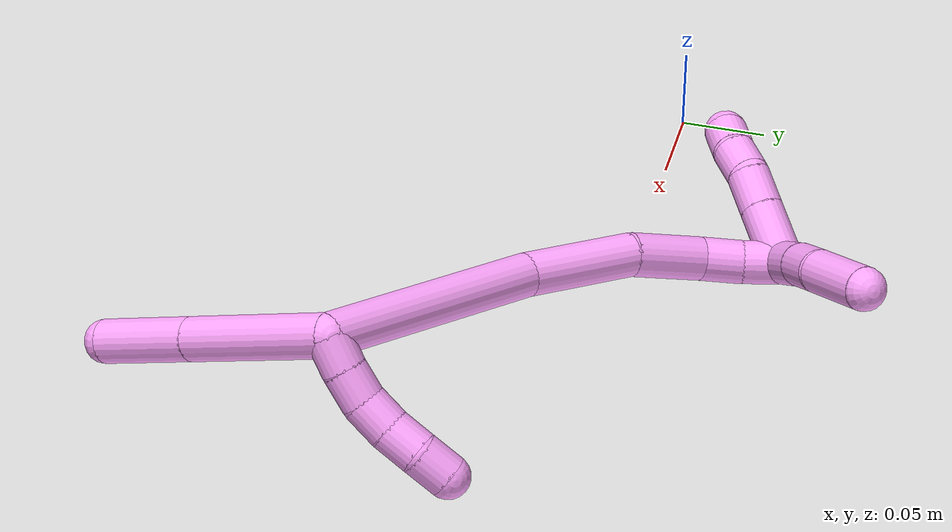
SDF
<sdf version="1.7">
 <world name="default">
  <model name="4">
   <static>0</static>
   <link name="4">
    <collision name="collision-cylinder-e_1_2_8">
     <pose>-0.016572 -0.022882 -0.035444 2.56834 -0.374292 -1.14212</pose>
     <geometry><cylinder><radius>0.0125</radius><length>0.090652</length></cylinder></geometry>
     <surface>
      <friction><ode><mu>1.16</mu><mu2>1.16</mu2><slip1>0</slip1><slip2>0</slip2></ode></friction>
      <contact><ode><kp>1e+06</kp><kd>1</kd><max_vel>0</max_vel><min_depth>0.001</min_depth></ode></contact>
     </surface>
    </collision>
    <visual name="visual-cylinder-e_1_2_8">
     <pose>-0.016572 -0.022882 -0.035444 2.56834 -0.374292 -1.14212</pose>
     <geometry><cylinder><radius>0.0125</radius><length>0.090652</length></cylinder></geometry>
     <material><ambient>1 0.65098 0.996078 1</ambient></material>
    </visual>
    <collision name="collision-cylinder-e_2_8_6">
     <pose>-0.04407 -0.060788 -0.094027 2.56568 -0.377072 -1.14456</pose>
     <geometry><cylinder><radius>0.0125</radius><length>0.059348</length></cylinder></geometry>
     <surface>
      <friction><ode><mu>1.16</mu><mu2>1.16</mu2><slip1>0</slip1><slip2>0</slip2></ode></friction>
      <contact><ode><kp>1e+06</kp><kd>1</kd><max_vel>0</max_vel><min_depth>0.001</min_depth></ode></contact>
     </surface>
    </collision>
    <visual name="visual-cylinder-e_2_8_6">
     <pose>-0.04407 -0.060788 -0.094027 2.56568 -0.377072 -1.14456</pose>
     <geometry><cylinder><radius>0.0125</radius><length>0.059348</length></cylinder></geometry>
     <material><ambient>1 0.65098 0.996078 1</ambient></material>
    </visual>
    <collision name="collision-cylinder-e_1_2_9">
     <pose>0.009133 -0.003706 0.001688 1.14351 1.15136 0.791182</pose>
     <geometry><cylinder><radius>0.0125</radius><length>0.02</length></cylinder></geometry>
     <surface>
      <friction><ode><mu>1.16</mu><mu2>1.16</mu2><slip1>0</slip1><slip2>0</slip2></ode></friction>
      <contact><ode><kp>1e+06</kp><kd>1</kd><max_vel>0</max_vel><min_depth>0.001</min_depth></ode></contact>
     </surface>
    </collision>
    <visual name="visual-cylinder-e_1_2_9">
     <pose>0.009133 -0.003706 0.001688 1.14351 1.15136 0.791182</pose>
     <geometry><cylinder><radius>0.0125</radius><length>0.02</length></cylinder></geometry>
     <material><ambient>1 0.65098 0.996078 1</ambient></material>
    </visual>
    <collision name="collision-cylinder-e_2_9_10">
     <pose>0.027681 -0.010258 0.005186 1.00397 1.22682 0.737482</pose>
     <geometry><cylinder><radius>0.0125</radius><length>0.02</length></cylinder></geometry>
     <surface>
      <friction><ode><mu>1.16</mu><mu2>1.16</mu2><slip1>0</slip1><slip2>0</slip2></ode></friction>
      <contact><ode><kp>1e+06</kp><kd>1</kd><max_vel>0</max_vel><min_depth>0.001</min_depth></ode></contact>
     </surface>
    </collision>
    <visual name="visual-cylinder-e_2_9_10">
     <pose>0.027681 -0.010258 0.005186 1.00397 1.22682 0.737482</pose>
     <geometry><cylinder><radius>0.0125</radius><length>0.02</length></cylinder></geometry>
     <material><ambient>1 0.65098 0.996078 1</ambient></material>
    </visual>
    <collision name="collision-cylinder-e_3_10_11">
     <pose>0.046457 -0.013918 0.010416 0.234068 1.2116 0.162521</pose>
     <geometry><cylinder><radius>0.0125</radius><length>0.02</length></cylinder></geometry>
     <surface>
      <friction><ode><mu>1.16</mu><mu2>1.16</mu2><slip1>0</slip1><slip2>0</slip2></ode></friction>
      <contact><ode><kp>1e+06</kp><kd>1</kd><max_vel>0</max_vel><min_depth>0.001</min_depth></ode></contact>
     </surface>
    </collision>
    <visual name="visual-cylinder-e_3_10_11">
     <pose>0.046457 -0.013918 0.010416 0.234068 1.2116 0.162521</pose>
     <geometry><cylinder><radius>0.0125</radius><length>0.02</length></cylinder></geometry>
     <material><ambient>1 0.65098 0.996078 1</ambient></material>
    </visual>
    <collision name="collision-cylinder-e_4_11_12">
     <pose>0.064927 -0.014346 0.017946 -0.093987 1.14525 -0.060617</pose>
     <geometry><cylinder><radius>0.0125</radius><length>0.02</length></cylinder></geometry>
     <surface>
      <friction><ode><mu>1.16</mu><mu2>1.16</mu2><slip1>0</slip1><slip2>0</slip2></ode></friction>
      <contact><ode><kp>1e+06</kp><kd>1</kd><max_vel>0</max_vel><min_depth>0.001</min_depth></ode></contact>
     </surface>
    </collision>
    <visual name="visual-cylinder-e_4_11_12">
     <pose>0.064927 -0.014346 0.017946 -0.093987 1.14525 -0.060617</pose>
     <geometry><cylinder><radius>0.0125</radius><length>0.02</length></cylinder></geometry>
     <material><ambient>1 0.65098 0.996078 1</ambient></material>
    </visual>
    <collision name="collision-cylinder-e_5_12_5">
     <pose>0.083804 -0.01329 0.024084 -0.318253 1.35556 -0.256952</pose>
     <geometry><cylinder><radius>0.0125</radius><length>0.02</length></cylinder></geometry>
     <surface>
      <friction><ode><mu>1.16</mu><mu2>1.16</mu2><slip1>0</slip1><slip2>0</slip2></ode></friction>
      <contact><ode><kp>1e+06</kp><kd>1</kd><max_vel>0</max_vel><min_depth>0.001</min_depth></ode></contact>
     </surface>
    </collision>
    <visual name="visual-cylinder-e_5_12_5">
     <pose>0.083804 -0.01329 0.024084 -0.318253 1.35556 -0.256952</pose>
     <geometry><cylinder><radius>0.0125</radius><length>0.02</length></cylinder></geometry>
     <material><ambient>1 0.65098 0.996078 1</ambient></material>
    </visual>
    <collision name="collision-cylinder-e_1_2_13">
     <pose>0.039139 0.05243 -0.024657 -2.0104 0.594116 -0.898683</pose>
     <geometry><cylinder><radius>0.0125</radius><length>0.139839</length></cylinder></geometry>
     <surface>
      <friction><ode><mu>1.16</mu><mu2>1.16</mu2><slip1>0</slip1><slip2>0</slip2></ode></friction>
      <contact><ode><kp>1e+06</kp><kd>1</kd><max_vel>0</max_vel><min_depth>0.001</min_depth></ode></contact>
     </surface>
    </collision>
    <visual name="visual-cylinder-e_1_2_13">
     <pose>0.039139 0.05243 -0.024657 -2.0104 0.594116 -0.898683</pose>
     <geometry><cylinder><radius>0.0125</radius><length>0.139839</length></cylinder></geometry>
     <material><ambient>1 0.65098 0.996078 1</ambient></material>
    </visual>
    <collision name="collision-cylinder-e_2_13_14">
     <pose>0.099371 0.13067 -0.054041 -1.75189 0.677074 -0.799357</pose>
     <geometry><cylinder><radius>0.0125</radius><length>0.067331</length></cylinder></geometry>
     <surface>
      <friction><ode><mu>1.16</mu><mu2>1.16</mu2><slip1>0</slip1><slip2>0</slip2></ode></friction>
      <contact><ode><kp>1e+06</kp><kd>1</kd><max_vel>0</max_vel><min_depth>0.001</min_depth></ode></contact>
     </surface>
    </collision>
    <visual name="visual-cylinder-e_2_13_14">
     <pose>0.099371 0.13067 -0.054041 -1.75189 0.677074 -0.799357</pose>
     <geometry><cylinder><radius>0.0125</radius><length>0.067331</length></cylinder></geometry>
     <material><ambient>1 0.65098 0.996078 1</ambient></material>
    </visual>
    <collision name="collision-cylinder-e_3_14_15">
     <pose>0.138144 0.170347 -0.06142 -1.75984 0.896951 -1.05411</pose>
     <geometry><cylinder><radius>0.0125</radius><length>0.045254</length></cylinder></geometry>
     <surface>
      <friction><ode><mu>1.16</mu><mu2>1.16</mu2><slip1>0</slip1><slip2>0</slip2></ode></friction>
      <contact><ode><kp>1e+06</kp><kd>1</kd><max_vel>0</max_vel><min_depth>0.001</min_depth></ode></contact>
     </surface>
    </collision>
    <visual name="visual-cylinder-e_3_14_15">
     <pose>0.138144 0.170347 -0.06142 -1.75984 0.896951 -1.05411</pose>
     <geometry><cylinder><radius>0.0125</radius><length>0.045254</length></cylinder></geometry>
     <material><ambient>1 0.65098 0.996078 1</ambient></material>
    </visual>
    <collision name="collision-cylinder-e_4_15_16">
     <pose>0.165264 0.191724 -0.061584 -1.2507 0.873223 -0.649966</pose>
     <geometry><cylinder><radius>0.0125</radius><length>0.024632</length></cylinder></geometry>
     <surface>
      <friction><ode><mu>1.16</mu><mu2>1.16</mu2><slip1>0</slip1><slip2>0</slip2></ode></friction>
      <contact><ode><kp>1e+06</kp><kd>1</kd><max_vel>0</max_vel><min_depth>0.001</min_depth></ode></contact>
     </surface>
    </collision>
    <visual name="visual-cylinder-e_4_15_16">
     <pose>0.165264 0.191724 -0.061584 -1.2507 0.873223 -0.649966</pose>
     <geometry><cylinder><radius>0.0125</radius><length>0.024632</length></cylinder></geometry>
     <material><ambient>1 0.65098 0.996078 1</ambient></material>
    </visual>
    <collision name="collision-cylinder-e_5_16_1">
     <pose>0.182237 0.20661 -0.054574 -1.02098 0.716477 -0.413333</pose>
     <geometry><cylinder><radius>0.0125</radius><length>0.022944</length></cylinder></geometry>
     <surface>
      <friction><ode><mu>1.16</mu><mu2>1.16</mu2><slip1>0</slip1><slip2>0</slip2></ode></friction>
      <contact><ode><kp>1e+06</kp><kd>1</kd><max_vel>0</max_vel><min_depth>0.001</min_depth></ode></contact>
     </surface>
    </collision>
    <visual name="visual-cylinder-e_5_16_1">
     <pose>0.182237 0.20661 -0.054574 -1.02098 0.716477 -0.413333</pose>
     <geometry><cylinder><radius>0.0125</radius><length>0.022944</length></cylinder></geometry>
     <material><ambient>1 0.65098 0.996078 1</ambient></material>
    </visual>
    <collision name="collision-cylinder-e_1_1_17">
     <pose>0.188234 0.214255 -0.035281 -0.018192 -0.103655 0.000944</pose>
     <geometry><cylinder><radius>0.0125</radius><length>0.02971</length></cylinder></geometry>
     <surface>
      <friction><ode><mu>1.16</mu><mu2>1.16</mu2><slip1>0</slip1><slip2>0</slip2></ode></friction>
      <contact><ode><kp>1e+06</kp><kd>1</kd><max_vel>0</max_vel><min_depth>0.001</min_depth></ode></contact>
     </surface>
    </collision>
    <visual name="visual-cylinder-e_1_1_17">
     <pose>0.188234 0.214255 -0.035281 -0.018192 -0.103655 0.000944</pose>
     <geometry><cylinder><radius>0.0125</radius><length>0.02971</length></cylinder></geometry>
     <material><ambient>1 0.65098 0.996078 1</ambient></material>
    </visual>
    <collision name="collision-cylinder-e_2_17_18">
     <pose>0.186168 0.213867 -0.006914 0.048312 -0.038848 -0.000939</pose>
     <geometry><cylinder><radius>0.0125</radius><length>0.027239</length></cylinder></geometry>
     <surface>
      <friction><ode><mu>1.16</mu><mu2>1.16</mu2><slip1>0</slip1><slip2>0</slip2></ode></friction>
      <contact><ode><kp>1e+06</kp><kd>1</kd><max_vel>0</max_vel><min_depth>0.001</min_depth></ode></contact>
     </surface>
    </collision>
    <visual name="visual-cylinder-e_2_17_18">
     <pose>0.186168 0.213867 -0.006914 0.048312 -0.038848 -0.000939</pose>
     <geometry><cylinder><radius>0.0125</radius><length>0.027239</length></cylinder></geometry>
     <material><ambient>1 0.65098 0.996078 1</ambient></material>
    </visual>
    <collision name="collision-cylinder-e_3_18_4">
     <pose>0.189606 0.214035 0.02782 -0.039037 0.185348 -0.003629</pose>
     <geometry><cylinder><radius>0.0125</radius><length>0.043051</length></cylinder></geometry>
     <surface>
      <friction><ode><mu>1.16</mu><mu2>1.16</mu2><slip1>0</slip1><slip2>0</slip2></ode></friction>
      <contact><ode><kp>1e+06</kp><kd>1</kd><max_vel>0</max_vel><min_depth>0.001</min_depth></ode></contact>
     </surface>
    </collision>
    <visual name="visual-cylinder-e_3_18_4">
     <pose>0.189606 0.214035 0.02782 -0.039037 0.185348 -0.003629</pose>
     <geometry><cylinder><radius>0.0125</radius><length>0.043051</length></cylinder></geometry>
     <material><ambient>1 0.65098 0.996078 1</ambient></material>
    </visual>
    <collision name="collision-cylinder-e_1_1_19">
     <pose>0.178571 0.222682 -0.060502 -2.4475 -0.689166 1.56306</pose>
     <geometry><cylinder><radius>0.0125</radius><length>0.035227</length></cylinder></geometry>
     <surface>
      <friction><ode><mu>1.16</mu><mu2>1.16</mu2><slip1>0</slip1><slip2>0</slip2></ode></friction>
      <contact><ode><kp>1e+06</kp><kd>1</kd><max_vel>0</max_vel><min_depth>0.001</min_depth></ode></contact>
     </surface>
    </collision>
    <visual name="visual-cylinder-e_1_1_19">
     <pose>0.178571 0.222682 -0.060502 -2.4475 -0.689166 1.56306</pose>
     <geometry><cylinder><radius>0.0125</radius><length>0.035227</length></cylinder></geometry>
     <material><ambient>1 0.65098 0.996078 1</ambient></material>
    </visual>
    <collision name="collision-cylinder-e_2_19_20">
     <pose>0.159893 0.237217 -0.077931 -2.44504 -0.687784 1.55705</pose>
     <geometry><cylinder><radius>0.0125</radius><length>0.023557</length></cylinder></geometry>
     <surface>
      <friction><ode><mu>1.16</mu><mu2>1.16</mu2><slip1>0</slip1><slip2>0</slip2></ode></friction>
      <contact><ode><kp>1e+06</kp><kd>1</kd><max_vel>0</max_vel><min_depth>0.001</min_depth></ode></contact>
     </surface>
    </collision>
    <visual name="visual-cylinder-e_2_19_20">
     <pose>0.159893 0.237217 -0.077931 -2.44504 -0.687784 1.55705</pose>
     <geometry><cylinder><radius>0.0125</radius><length>0.023557</length></cylinder></geometry>
     <material><ambient>1 0.65098 0.996078 1</ambient></material>
    </visual>
    <collision name="collision-cylinder-e_3_20_21">
     <pose>0.147722 0.24679 -0.093473 -2.73022 -0.465666 1.69847</pose>
     <geometry><cylinder><radius>0.0125</radius><length>0.020906</length></cylinder></geometry>
     <surface>
      <friction><ode><mu>1.16</mu><mu2>1.16</mu2><slip1>0</slip1><slip2>0</slip2></ode></friction>
      <contact><ode><kp>1e+06</kp><kd>1</kd><max_vel>0</max_vel><min_depth>0.001</min_depth></ode></contact>
     </surface>
    </collision>
    <visual name="visual-cylinder-e_3_20_21">
     <pose>0.147722 0.24679 -0.093473 -2.73022 -0.465666 1.69847</pose>
     <geometry><cylinder><radius>0.0125</radius><length>0.020906</length></cylinder></geometry>
     <material><ambient>1 0.65098 0.996078 1</ambient></material>
    </visual>
    <collision name="collision-cylinder-e_4_21_3">
     <pose>0.140419 0.254907 -0.110815 -2.67876 -0.259874 1.01266</pose>
     <geometry><cylinder><radius>0.0125</radius><length>0.02031</length></cylinder></geometry>
     <surface>
      <friction><ode><mu>1.16</mu><mu2>1.16</mu2><slip1>0</slip1><slip2>0</slip2></ode></friction>
      <contact><ode><kp>1e+06</kp><kd>1</kd><max_vel>0</max_vel><min_depth>0.001</min_depth></ode></contact>
     </surface>
    </collision>
    <visual name="visual-cylinder-e_4_21_3">
     <pose>0.140419 0.254907 -0.110815 -2.67876 -0.259874 1.01266</pose>
     <geometry><cylinder><radius>0.0125</radius><length>0.02031</length></cylinder></geometry>
     <material><ambient>1 0.65098 0.996078 1</ambient></material>
    </visual>
    <collision name="collision-sphere-3">
     <pose>0.13781 0.259289 -0.119596 0 -0 0</pose>
     <geometry><sphere><radius>0.0125</radius></sphere></geometry>
     <surface>
      <friction><ode><mu>1.16</mu><mu2>1.16</mu2><slip1>0</slip1><slip2>0</slip2></ode></friction>
      <contact><ode><kp>1e+06</kp><kd>1</kd><max_vel>0</max_vel><min_depth>0.001</min_depth></ode></contact>
     </surface>
    </collision>
    <visual name="visual-sphere-3">
     <pose>0.13781 0.259289 -0.119596 0 -0 0</pose>
     <geometry><sphere><radius>0.0125</radius></sphere></geometry>
     <material><ambient>1 0.65098 0.996078 1</ambient></material>
    </visual>
    <collision name="collision-sphere-21">
     <pose>0.143029 0.250525 -0.102034 0 -0 0</pose>
     <geometry><sphere><radius>0.0125</radius></sphere></geometry>
     <surface>
      <friction><ode><mu>1.16</mu><mu2>1.16</mu2><slip1>0</slip1><slip2>0</slip2></ode></friction>
      <contact><ode><kp>1e+06</kp><kd>1</kd><max_vel>0</max_vel><min_depth>0.001</min_depth></ode></contact>
     </surface>
    </collision>
    <visual name="visual-sphere-21">
     <pose>0.143029 0.250525 -0.102034 0 -0 0</pose>
     <geometry><sphere><radius>0.0125</radius></sphere></geometry>
     <material><ambient>1 0.65098 0.996078 1</ambient></material>
    </visual>
    <collision name="collision-sphere-20">
     <pose>0.152416 0.243056 -0.084912 0 -0 0</pose>
     <geometry><sphere><radius>0.0125</radius></sphere></geometry>
     <surface>
      <friction><ode><mu>1.16</mu><mu2>1.16</mu2><slip1>0</slip1><slip2>0</slip2></ode></friction>
      <contact><ode><kp>1e+06</kp><kd>1</kd><max_vel>0</max_vel><min_depth>0.001</min_depth></ode></contact>
     </surface>
    </collision>
    <visual name="visual-sphere-20">
     <pose>0.152416 0.243056 -0.084912 0 -0 0</pose>
     <geometry><sphere><radius>0.0125</radius></sphere></geometry>
     <material><ambient>1 0.65098 0.996078 1</ambient></material>
    </visual>
    <collision name="collision-sphere-19">
     <pose>0.167371 0.231378 -0.070951 0 -0 0</pose>
     <geometry><sphere><radius>0.0125</radius></sphere></geometry>
     <surface>
      <friction><ode><mu>1.16</mu><mu2>1.16</mu2><slip1>0</slip1><slip2>0</slip2></ode></friction>
      <contact><ode><kp>1e+06</kp><kd>1</kd><max_vel>0</max_vel><min_depth>0.001</min_depth></ode></contact>
     </surface>
    </collision>
    <visual name="visual-sphere-19">
     <pose>0.167371 0.231378 -0.070951 0 -0 0</pose>
     <geometry><sphere><radius>0.0125</radius></sphere></geometry>
     <material><ambient>1 0.65098 0.996078 1</ambient></material>
    </visual>
    <collision name="collision-sphere-11">
     <pose>0.055818 -0.014733 0.013836 0 -0 0</pose>
     <geometry><sphere><radius>0.0125</radius></sphere></geometry>
     <surface>
      <friction><ode><mu>1.16</mu><mu2>1.16</mu2><slip1>0</slip1><slip2>0</slip2></ode></friction>
      <contact><ode><kp>1e+06</kp><kd>1</kd><max_vel>0</max_vel><min_depth>0.001</min_depth></ode></contact>
     </surface>
    </collision>
    <visual name="visual-sphere-11">
     <pose>0.055818 -0.014733 0.013836 0 -0 0</pose>
     <geometry><sphere><radius>0.0125</radius></sphere></geometry>
     <material><ambient>1 0.65098 0.996078 1</ambient></material>
    </visual>
    <collision name="collision-sphere-10">
     <pose>0.037095 -0.013102 0.006997 0 -0 0</pose>
     <geometry><sphere><radius>0.0125</radius></sphere></geometry>
     <surface>
      <friction><ode><mu>1.16</mu><mu2>1.16</mu2><slip1>0</slip1><slip2>0</slip2></ode></friction>
      <contact><ode><kp>1e+06</kp><kd>1</kd><max_vel>0</max_vel><min_depth>0.001</min_depth></ode></contact>
     </surface>
    </collision>
    <visual name="visual-sphere-10">
     <pose>0.037095 -0.013102 0.006997 0 -0 0</pose>
     <geometry><sphere><radius>0.0125</radius></sphere></geometry>
     <material><ambient>1 0.65098 0.996078 1</ambient></material>
    </visual>
    <collision name="collision-sphere-6">
     <pose>-0.054996 -0.075813 -0.117166 0 -0 0</pose>
     <geometry><sphere><radius>0.0125</radius></sphere></geometry>
     <surface>
      <friction><ode><mu>1.16</mu><mu2>1.16</mu2><slip1>0</slip1><slip2>0</slip2></ode></friction>
      <contact><ode><kp>1e+06</kp><kd>1</kd><max_vel>0</max_vel><min_depth>0.001</min_depth></ode></contact>
     </surface>
    </collision>
    <visual name="visual-sphere-6">
     <pose>-0.054996 -0.075813 -0.117166 0 -0 0</pose>
     <geometry><sphere><radius>0.0125</radius></sphere></geometry>
     <material><ambient>1 0.65098 0.996078 1</ambient></material>
    </visual>
    <collision name="collision-sphere-9">
     <pose>0.018266 -0.007413 0.003375 0 -0 0</pose>
     <geometry><sphere><radius>0.0125</radius></sphere></geometry>
     <surface>
      <friction><ode><mu>1.16</mu><mu2>1.16</mu2><slip1>0</slip1><slip2>0</slip2></ode></friction>
      <contact><ode><kp>1e+06</kp><kd>1</kd><max_vel>0</max_vel><min_depth>0.001</min_depth></ode></contact>
     </surface>
    </collision>
    <visual name="visual-sphere-9">
     <pose>0.018266 -0.007413 0.003375 0 -0 0</pose>
     <geometry><sphere><radius>0.0125</radius></sphere></geometry>
     <material><ambient>1 0.65098 0.996078 1</ambient></material>
    </visual>
    <collision name="collision-sphere-2">
     <geometry><sphere><radius>0.0125</radius></sphere></geometry>
     <surface>
      <friction><ode><mu>1.16</mu><mu2>1.16</mu2><slip1>0</slip1><slip2>0</slip2></ode></friction>
      <contact><ode><kp>1e+06</kp><kd>1</kd><max_vel>0</max_vel><min_depth>0.001</min_depth></ode></contact>
     </surface>
    </collision>
    <visual name="visual-sphere-2">
     <geometry><sphere><radius>0.0125</radius></sphere></geometry>
     <material><ambient>1 0.65098 0.996078 1</ambient></material>
    </visual>
    <collision name="collision-sphere-8">
     <pose>-0.033144 -0.045763 -0.070888 0 -0 0</pose>
     <geometry><sphere><radius>0.0125</radius></sphere></geometry>
     <surface>
      <friction><ode><mu>1.16</mu><mu2>1.16</mu2><slip1>0</slip1><slip2>0</slip2></ode></friction>
      <contact><ode><kp>1e+06</kp><kd>1</kd><max_vel>0</max_vel><min_depth>0.001</min_depth></ode></contact>
     </surface>
    </collision>
    <visual name="visual-sphere-8">
     <pose>-0.033144 -0.045763 -0.070888 0 -0 0</pose>
     <geometry><sphere><radius>0.0125</radius></sphere></geometry>
     <material><ambient>1 0.65098 0.996078 1</ambient></material>
    </visual>
    <collision name="collision-sphere-12">
     <pose>0.074035 -0.013958 0.022056 0 -0 0</pose>
     <geometry><sphere><radius>0.0125</radius></sphere></geometry>
     <surface>
      <friction><ode><mu>1.16</mu><mu2>1.16</mu2><slip1>0</slip1><slip2>0</slip2></ode></friction>
      <contact><ode><kp>1e+06</kp><kd>1</kd><max_vel>0</max_vel><min_depth>0.001</min_depth></ode></contact>
     </surface>
    </collision>
    <visual name="visual-sphere-12">
     <pose>0.074035 -0.013958 0.022056 0 -0 0</pose>
     <geometry><sphere><radius>0.0125</radius></sphere></geometry>
     <material><ambient>1 0.65098 0.996078 1</ambient></material>
    </visual>
    <collision name="collision-sphere-5">
     <pose>0.093573 -0.012622 0.026113 0 -0 0</pose>
     <geometry><sphere><radius>0.0125</radius></sphere></geometry>
     <surface>
      <friction><ode><mu>1.16</mu><mu2>1.16</mu2><slip1>0</slip1><slip2>0</slip2></ode></friction>
      <contact><ode><kp>1e+06</kp><kd>1</kd><max_vel>0</max_vel><min_depth>0.001</min_depth></ode></contact>
     </surface>
    </collision>
    <visual name="visual-sphere-5">
     <pose>0.093573 -0.012622 0.026113 0 -0 0</pose>
     <geometry><sphere><radius>0.0125</radius></sphere></geometry>
     <material><ambient>1 0.65098 0.996078 1</ambient></material>
    </visual>
    <collision name="collision-sphere-13">
     <pose>0.078279 0.10486 -0.049315 0 -0 0</pose>
     <geometry><sphere><radius>0.0125</radius></sphere></geometry>
     <surface>
      <friction><ode><mu>1.16</mu><mu2>1.16</mu2><slip1>0</slip1><slip2>0</slip2></ode></friction>
      <contact><ode><kp>1e+06</kp><kd>1</kd><max_vel>0</max_vel><min_depth>0.001</min_depth></ode></contact>
     </surface>
    </collision>
    <visual name="visual-sphere-13">
     <pose>0.078279 0.10486 -0.049315 0 -0 0</pose>
     <geometry><sphere><radius>0.0125</radius></sphere></geometry>
     <material><ambient>1 0.65098 0.996078 1</ambient></material>
    </visual>
    <collision name="collision-sphere-14">
     <pose>0.120463 0.15648 -0.058767 0 -0 0</pose>
     <geometry><sphere><radius>0.0125</radius></sphere></geometry>
     <surface>
      <friction><ode><mu>1.16</mu><mu2>1.16</mu2><slip1>0</slip1><slip2>0</slip2></ode></friction>
      <contact><ode><kp>1e+06</kp><kd>1</kd><max_vel>0</max_vel><min_depth>0.001</min_depth></ode></contact>
     </surface>
    </collision>
    <visual name="visual-sphere-14">
     <pose>0.120463 0.15648 -0.058767 0 -0 0</pose>
     <geometry><sphere><radius>0.0125</radius></sphere></geometry>
     <material><ambient>1 0.65098 0.996078 1</ambient></material>
    </visual>
    <collision name="collision-sphere-15">
     <pose>0.155825 0.184215 -0.064073 0 -0 0</pose>
     <geometry><sphere><radius>0.0125</radius></sphere></geometry>
     <surface>
      <friction><ode><mu>1.16</mu><mu2>1.16</mu2><slip1>0</slip1><slip2>0</slip2></ode></friction>
      <contact><ode><kp>1e+06</kp><kd>1</kd><max_vel>0</max_vel><min_depth>0.001</min_depth></ode></contact>
     </surface>
    </collision>
    <visual name="visual-sphere-15">
     <pose>0.155825 0.184215 -0.064073 0 -0 0</pose>
     <geometry><sphere><radius>0.0125</radius></sphere></geometry>
     <material><ambient>1 0.65098 0.996078 1</ambient></material>
    </visual>
    <collision name="collision-sphere-16">
     <pose>0.174703 0.199234 -0.059095 0 -0 0</pose>
     <geometry><sphere><radius>0.0125</radius></sphere></geometry>
     <surface>
      <friction><ode><mu>1.16</mu><mu2>1.16</mu2><slip1>0</slip1><slip2>0</slip2></ode></friction>
      <contact><ode><kp>1e+06</kp><kd>1</kd><max_vel>0</max_vel><min_depth>0.001</min_depth></ode></contact>
     </surface>
    </collision>
    <visual name="visual-sphere-16">
     <pose>0.174703 0.199234 -0.059095 0 -0 0</pose>
     <geometry><sphere><radius>0.0125</radius></sphere></geometry>
     <material><ambient>1 0.65098 0.996078 1</ambient></material>
    </visual>
    <collision name="collision-sphere-1">
     <pose>0.189771 0.213986 -0.050053 0 -0 0</pose>
     <geometry><sphere><radius>0.0125</radius></sphere></geometry>
     <surface>
      <friction><ode><mu>1.16</mu><mu2>1.16</mu2><slip1>0</slip1><slip2>0</slip2></ode></friction>
      <contact><ode><kp>1e+06</kp><kd>1</kd><max_vel>0</max_vel><min_depth>0.001</min_depth></ode></contact>
     </surface>
    </collision>
    <visual name="visual-sphere-1">
     <pose>0.189771 0.213986 -0.050053 0 -0 0</pose>
     <geometry><sphere><radius>0.0125</radius></sphere></geometry>
     <material><ambient>1 0.65098 0.996078 1</ambient></material>
    </visual>
    <collision name="collision-sphere-18">
     <pose>0.185639 0.213209 0.006679 0 -0 0</pose>
     <geometry><sphere><radius>0.0125</radius></sphere></geometry>
     <surface>
      <friction><ode><mu>1.16</mu><mu2>1.16</mu2><slip1>0</slip1><slip2>0</slip2></ode></friction>
      <contact><ode><kp>1e+06</kp><kd>1</kd><max_vel>0</max_vel><min_depth>0.001</min_depth></ode></contact>
     </surface>
    </collision>
    <visual name="visual-sphere-18">
     <pose>0.185639 0.213209 0.006679 0 -0 0</pose>
     <geometry><sphere><radius>0.0125</radius></sphere></geometry>
     <material><ambient>1 0.65098 0.996078 1</ambient></material>
    </visual>
    <collision name="collision-sphere-17">
     <pose>0.186697 0.214524 -0.020508 0 -0 0</pose>
     <geometry><sphere><radius>0.0125</radius></sphere></geometry>
     <surface>
      <friction><ode><mu>1.16</mu><mu2>1.16</mu2><slip1>0</slip1><slip2>0</slip2></ode></friction>
      <contact><ode><kp>1e+06</kp><kd>1</kd><max_vel>0</max_vel><min_depth>0.001</min_depth></ode></contact>
     </surface>
    </collision>
    <visual name="visual-sphere-17">
     <pose>0.186697 0.214524 -0.020508 0 -0 0</pose>
     <geometry><sphere><radius>0.0125</radius></sphere></geometry>
     <material><ambient>1 0.65098 0.996078 1</ambient></material>
    </visual>
    <collision name="collision-sphere-4">
     <pose>0.193573 0.214861 0.04896 0 -0 0</pose>
     <geometry><sphere><radius>0.0125</radius></sphere></geometry>
     <surface>
      <friction><ode><mu>1.16</mu><mu2>1.16</mu2><slip1>0</slip1><slip2>0</slip2></ode></friction>
      <contact><ode><kp>1e+06</kp><kd>1</kd><max_vel>0</max_vel><min_depth>0.001</min_depth></ode></contact>
     </surface>
    </collision>
    <visual name="visual-sphere-4">
     <pose>0.193573 0.214861 0.04896 0 -0 0</pose>
     <geometry><sphere><radius>0.0125</radius></sphere></geometry>
     <material><ambient>1 0.65098 0.996078 1</ambient></material>
    </visual>
    <inertial>
     <pose>0.082684 0.095579 -0.037937 0 -0 0</pose>
     <mass>0.75</mass>
     <inertia>
      <ixx>-3.2e-05</ixx>
      <ixy>0</ixy>
      <ixz>0</ixz>
      <iyy>-0.000166</iyy>
      <iyz>0</iyz>
      <izz>-0.000304</izz>
     </inertia>
    </inertial>
   </link>
   <pose>0.331231 -0.12241 0.073422 0.785098 0.806469 1.5983</pose>
  </model>
 </world>
</sdf>
